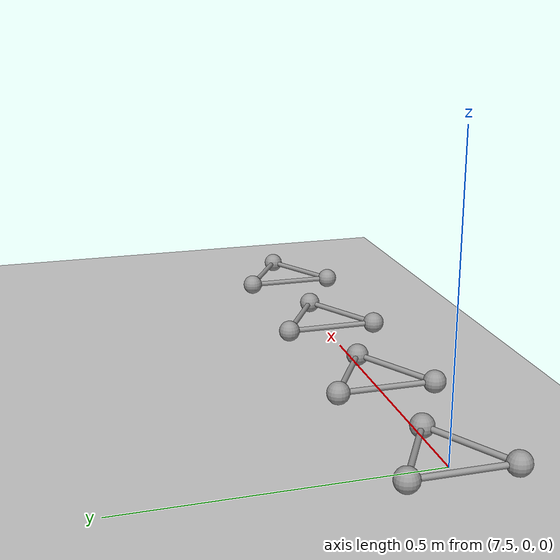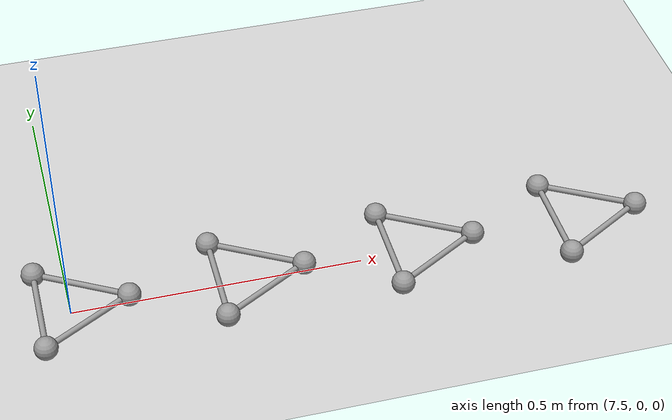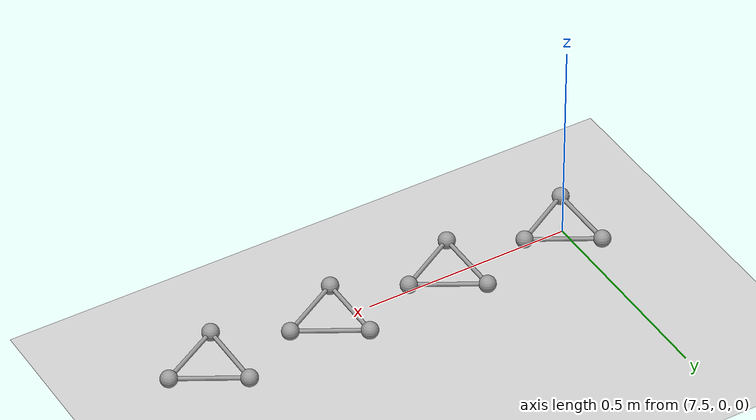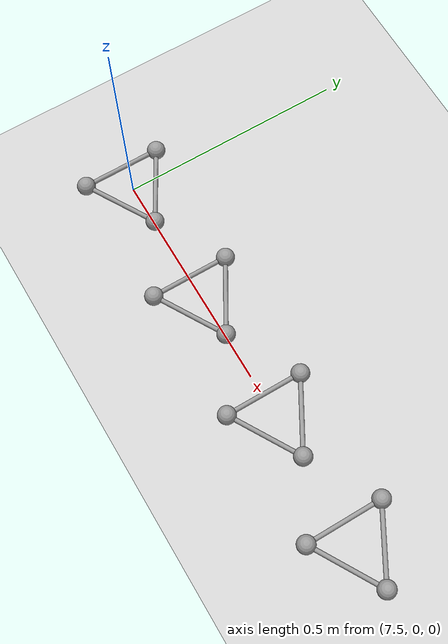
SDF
<sdf version="1.6">
 <world name="default">
  <include><uri>model://ground_plane</uri></include>
  <include><uri>model://sun</uri></include>
  <model name="triball_25">
   <pose>7.5 0 0 0 0 0</pose>
   <link name="link">
    <pose>0 0 0.02 0 0 0</pose>
    <inertial>
     <mass>0.060318578948924034</mass>
     <inertia>
      <ixx>0.000311243867376448</ixx>
      <iyy>0.000311243867376448</iyy>
      <izz>0.0006128367621210681</izz>
      <ixy>0.0</ixy>
      <ixz>0.0</ixz>
      <iyz>0.0</iyz>
     </inertia>
    </inertial>
    <sensor name="imu" type="imu"><always_on>true</always_on></sensor>
    <collision name="collision_a">
     <pose>0.09999999999999999 0 0  0 0 0</pose>
     <geometry><sphere><radius>0.02</radius></sphere></geometry>
     <surface><friction><ode><mu>0.9</mu><mu2>0.9</mu2><fdir1>1 0 0</fdir1></ode></friction></surface>
    </collision>
    <visual name="visual_a">
     <pose>0.09999999999999999 0 0  0 0 0</pose>
     <geometry><sphere><radius>0.02</radius></sphere></geometry>
     <material>
      <script><uri>file://media/materials/scripts/gazebo.material</uri><name>Gazebo/Grey</name></script>
     </material>
    </visual>
    <collision name="collision_a_to_b">
     <pose>0.024999999999999998 0.04330127018922193 0.0  -1.5707962969925737 -1.0471975511965974 1.047197525387029</pose>
     <geometry><cylinder><radius>0.005</radius><length>0.17320508075688773</length></cylinder></geometry>
     <surface><friction><ode><mu>0.9</mu><mu2>0.9</mu2></ode></friction></surface>
    </collision>
    <visual name="visual_a_to_b">
     <pose>0.024999999999999998 0.04330127018922193 0.0  -1.5707962969925737 -1.0471975511965974 1.047197525387029</pose>
     <geometry><cylinder><radius>0.005</radius><length>0.17320508075688773</length></cylinder></geometry>
     <material>
      <script><uri>file://media/materials/scripts/gazebo.material</uri><name>Gazebo/Grey</name></script>
     </material>
    </visual>
    <collision name="collision_a_to_c">
     <pose>0.024999999999999998 -0.04330127018922193 0.0  1.5707962969925737 -1.0471975511965974 -1.047197525387029</pose>
     <geometry><cylinder><radius>0.005</radius><length>0.17320508075688773</length></cylinder></geometry>
     <surface><friction><ode><mu>0.9</mu><mu2>0.9</mu2></ode></friction></surface>
    </collision>
    <visual name="visual_a_to_c">
     <pose>0.024999999999999998 -0.04330127018922193 0.0  1.5707962969925737 -1.0471975511965974 -1.047197525387029</pose>
     <geometry><cylinder><radius>0.005</radius><length>0.17320508075688773</length></cylinder></geometry>
     <material>
      <script><uri>file://media/materials/scripts/gazebo.material</uri><name>Gazebo/Grey</name></script>
     </material>
    </visual>
    <collision name="collision_b">
     <pose>-0.049999999999999996 0.08660254037844387 0  0 0 0</pose>
     <geometry><sphere><radius>0.02</radius></sphere></geometry>
     <surface><friction><ode><mu>0.9</mu><mu2>0.9</mu2><fdir1>1 0 0</fdir1></ode></friction></surface>
    </collision>
    <visual name="visual_b">
     <pose>-0.049999999999999996 0.08660254037844387 0  0 0 0</pose>
     <geometry><sphere><radius>0.02</radius></sphere></geometry>
     <material>
      <script><uri>file://media/materials/scripts/gazebo.material</uri><name>Gazebo/Grey</name></script>
     </material>
    </visual>
    <collision name="collision_b_to_c">
     <pose>-0.049999999999999996 0.0 0.0  1.5707963267948963 -0.0 0.0</pose>
     <geometry><cylinder><radius>0.005</radius><length>0.17320508075688773</length></cylinder></geometry>
     <surface><friction><ode><mu>0.9</mu><mu2>0.9</mu2></ode></friction></surface>
    </collision>
    <visual name="visual_b_to_c">
     <pose>-0.049999999999999996 0.0 0.0  1.5707963267948963 -0.0 0.0</pose>
     <geometry><cylinder><radius>0.005</radius><length>0.17320508075688773</length></cylinder></geometry>
     <material>
      <script><uri>file://media/materials/scripts/gazebo.material</uri><name>Gazebo/Grey</name></script>
     </material>
    </visual>
    <collision name="collision_c">
     <pose>-0.049999999999999996 -0.08660254037844387 0  0 0 0</pose>
     <geometry><sphere><radius>0.02</radius></sphere></geometry>
     <surface><friction><ode><mu>0.9</mu><mu2>0.9</mu2><fdir1>1 0 0</fdir1></ode></friction></surface>
    </collision>
    <visual name="visual_c">
     <pose>-0.049999999999999996 -0.08660254037844387 0  0 0 0</pose>
     <geometry><sphere><radius>0.02</radius></sphere></geometry>
     <material>
      <script><uri>file://media/materials/scripts/gazebo.material</uri><name>Gazebo/Grey</name></script>
     </material>
    </visual>
   </link>
   <plugin name="triball_25" filename="libInitialVelocityPlugin.so">
    <linear>0 15 0</linear>
    <angular>0 0 84.375</angular>
   </plugin>
  </model>
  <model name="triball_26">
   <pose>7.8 0 0 0 0 0</pose>
   <link name="link">
    <pose>0 0 0.02 0 0 0</pose>
    <inertial>
     <mass>0.060318578948924034</mass>
     <inertia>
      <ixx>0.000311243867376448</ixx>
      <iyy>0.000311243867376448</iyy>
      <izz>0.0006128367621210681</izz>
      <ixy>0.0</ixy>
      <ixz>0.0</ixz>
      <iyz>0.0</iyz>
     </inertia>
    </inertial>
    <sensor name="imu" type="imu"><always_on>true</always_on></sensor>
    <collision name="collision_a">
     <pose>0.09999999999999999 0 0  0 0 0</pose>
     <geometry><sphere><radius>0.02</radius></sphere></geometry>
     <surface><friction><ode><mu>0.9</mu><mu2>0.9</mu2><fdir1>1 0 0</fdir1></ode></friction></surface>
    </collision>
    <visual name="visual_a">
     <pose>0.09999999999999999 0 0  0 0 0</pose>
     <geometry><sphere><radius>0.02</radius></sphere></geometry>
     <material>
      <script><uri>file://media/materials/scripts/gazebo.material</uri><name>Gazebo/Grey</name></script>
     </material>
    </visual>
    <collision name="collision_a_to_b">
     <pose>0.024999999999999998 0.04330127018922193 0.0  -1.5707962969925737 -1.0471975511965974 1.047197525387029</pose>
     <geometry><cylinder><radius>0.005</radius><length>0.17320508075688773</length></cylinder></geometry>
     <surface><friction><ode><mu>0.9</mu><mu2>0.9</mu2></ode></friction></surface>
    </collision>
    <visual name="visual_a_to_b">
     <pose>0.024999999999999998 0.04330127018922193 0.0  -1.5707962969925737 -1.0471975511965974 1.047197525387029</pose>
     <geometry><cylinder><radius>0.005</radius><length>0.17320508075688773</length></cylinder></geometry>
     <material>
      <script><uri>file://media/materials/scripts/gazebo.material</uri><name>Gazebo/Grey</name></script>
     </material>
    </visual>
    <collision name="collision_a_to_c">
     <pose>0.024999999999999998 -0.04330127018922193 0.0  1.5707962969925737 -1.0471975511965974 -1.047197525387029</pose>
     <geometry><cylinder><radius>0.005</radius><length>0.17320508075688773</length></cylinder></geometry>
     <surface><friction><ode><mu>0.9</mu><mu2>0.9</mu2></ode></friction></surface>
    </collision>
    <visual name="visual_a_to_c">
     <pose>0.024999999999999998 -0.04330127018922193 0.0  1.5707962969925737 -1.0471975511965974 -1.047197525387029</pose>
     <geometry><cylinder><radius>0.005</radius><length>0.17320508075688773</length></cylinder></geometry>
     <material>
      <script><uri>file://media/materials/scripts/gazebo.material</uri><name>Gazebo/Grey</name></script>
     </material>
    </visual>
    <collision name="collision_b">
     <pose>-0.049999999999999996 0.08660254037844387 0  0 0 0</pose>
     <geometry><sphere><radius>0.02</radius></sphere></geometry>
     <surface><friction><ode><mu>0.9</mu><mu2>0.9</mu2><fdir1>1 0 0</fdir1></ode></friction></surface>
    </collision>
    <visual name="visual_b">
     <pose>-0.049999999999999996 0.08660254037844387 0  0 0 0</pose>
     <geometry><sphere><radius>0.02</radius></sphere></geometry>
     <material>
      <script><uri>file://media/materials/scripts/gazebo.material</uri><name>Gazebo/Grey</name></script>
     </material>
    </visual>
    <collision name="collision_b_to_c">
     <pose>-0.049999999999999996 0.0 0.0  1.5707963267948963 -0.0 0.0</pose>
     <geometry><cylinder><radius>0.005</radius><length>0.17320508075688773</length></cylinder></geometry>
     <surface><friction><ode><mu>0.9</mu><mu2>0.9</mu2></ode></friction></surface>
    </collision>
    <visual name="visual_b_to_c">
     <pose>-0.049999999999999996 0.0 0.0  1.5707963267948963 -0.0 0.0</pose>
     <geometry><cylinder><radius>0.005</radius><length>0.17320508075688773</length></cylinder></geometry>
     <material>
      <script><uri>file://media/materials/scripts/gazebo.material</uri><name>Gazebo/Grey</name></script>
     </material>
    </visual>
    <collision name="collision_c">
     <pose>-0.049999999999999996 -0.08660254037844387 0  0 0 0</pose>
     <geometry><sphere><radius>0.02</radius></sphere></geometry>
     <surface><friction><ode><mu>0.9</mu><mu2>0.9</mu2><fdir1>1 0 0</fdir1></ode></friction></surface>
    </collision>
    <visual name="visual_c">
     <pose>-0.049999999999999996 -0.08660254037844387 0  0 0 0</pose>
     <geometry><sphere><radius>0.02</radius></sphere></geometry>
     <material>
      <script><uri>file://media/materials/scripts/gazebo.material</uri><name>Gazebo/Grey</name></script>
     </material>
    </visual>
   </link>
   <plugin name="triball_26" filename="libInitialVelocityPlugin.so">
    <linear>0 15 0</linear>
    <angular>0 0 93.75</angular>
   </plugin>
  </model>
  <model name="triball_27">
   <pose>8.1 0 0 0 0 0</pose>
   <link name="link">
    <pose>0 0 0.02 0 0 0</pose>
    <inertial>
     <mass>0.060318578948924034</mass>
     <inertia>
      <ixx>0.000311243867376448</ixx>
      <iyy>0.000311243867376448</iyy>
      <izz>0.0006128367621210681</izz>
      <ixy>0.0</ixy>
      <ixz>0.0</ixz>
      <iyz>0.0</iyz>
     </inertia>
    </inertial>
    <sensor name="imu" type="imu"><always_on>true</always_on></sensor>
    <collision name="collision_a">
     <pose>0.09999999999999999 0 0  0 0 0</pose>
     <geometry><sphere><radius>0.02</radius></sphere></geometry>
     <surface><friction><ode><mu>0.9</mu><mu2>0.9</mu2><fdir1>1 0 0</fdir1></ode></friction></surface>
    </collision>
    <visual name="visual_a">
     <pose>0.09999999999999999 0 0  0 0 0</pose>
     <geometry><sphere><radius>0.02</radius></sphere></geometry>
     <material>
      <script><uri>file://media/materials/scripts/gazebo.material</uri><name>Gazebo/Grey</name></script>
     </material>
    </visual>
    <collision name="collision_a_to_b">
     <pose>0.024999999999999998 0.04330127018922193 0.0  -1.5707962969925737 -1.0471975511965974 1.047197525387029</pose>
     <geometry><cylinder><radius>0.005</radius><length>0.17320508075688773</length></cylinder></geometry>
     <surface><friction><ode><mu>0.9</mu><mu2>0.9</mu2></ode></friction></surface>
    </collision>
    <visual name="visual_a_to_b">
     <pose>0.024999999999999998 0.04330127018922193 0.0  -1.5707962969925737 -1.0471975511965974 1.047197525387029</pose>
     <geometry><cylinder><radius>0.005</radius><length>0.17320508075688773</length></cylinder></geometry>
     <material>
      <script><uri>file://media/materials/scripts/gazebo.material</uri><name>Gazebo/Grey</name></script>
     </material>
    </visual>
    <collision name="collision_a_to_c">
     <pose>0.024999999999999998 -0.04330127018922193 0.0  1.5707962969925737 -1.0471975511965974 -1.047197525387029</pose>
     <geometry><cylinder><radius>0.005</radius><length>0.17320508075688773</length></cylinder></geometry>
     <surface><friction><ode><mu>0.9</mu><mu2>0.9</mu2></ode></friction></surface>
    </collision>
    <visual name="visual_a_to_c">
     <pose>0.024999999999999998 -0.04330127018922193 0.0  1.5707962969925737 -1.0471975511965974 -1.047197525387029</pose>
     <geometry><cylinder><radius>0.005</radius><length>0.17320508075688773</length></cylinder></geometry>
     <material>
      <script><uri>file://media/materials/scripts/gazebo.material</uri><name>Gazebo/Grey</name></script>
     </material>
    </visual>
    <collision name="collision_b">
     <pose>-0.049999999999999996 0.08660254037844387 0  0 0 0</pose>
     <geometry><sphere><radius>0.02</radius></sphere></geometry>
     <surface><friction><ode><mu>0.9</mu><mu2>0.9</mu2><fdir1>1 0 0</fdir1></ode></friction></surface>
    </collision>
    <visual name="visual_b">
     <pose>-0.049999999999999996 0.08660254037844387 0  0 0 0</pose>
     <geometry><sphere><radius>0.02</radius></sphere></geometry>
     <material>
      <script><uri>file://media/materials/scripts/gazebo.material</uri><name>Gazebo/Grey</name></script>
     </material>
    </visual>
    <collision name="collision_b_to_c">
     <pose>-0.049999999999999996 0.0 0.0  1.5707963267948963 -0.0 0.0</pose>
     <geometry><cylinder><radius>0.005</radius><length>0.17320508075688773</length></cylinder></geometry>
     <surface><friction><ode><mu>0.9</mu><mu2>0.9</mu2></ode></friction></surface>
    </collision>
    <visual name="visual_b_to_c">
     <pose>-0.049999999999999996 0.0 0.0  1.5707963267948963 -0.0 0.0</pose>
     <geometry><cylinder><radius>0.005</radius><length>0.17320508075688773</length></cylinder></geometry>
     <material>
      <script><uri>file://media/materials/scripts/gazebo.material</uri><name>Gazebo/Grey</name></script>
     </material>
    </visual>
    <collision name="collision_c">
     <pose>-0.049999999999999996 -0.08660254037844387 0  0 0 0</pose>
     <geometry><sphere><radius>0.02</radius></sphere></geometry>
     <surface><friction><ode><mu>0.9</mu><mu2>0.9</mu2><fdir1>1 0 0</fdir1></ode></friction></surface>
    </collision>
    <visual name="visual_c">
     <pose>-0.049999999999999996 -0.08660254037844387 0  0 0 0</pose>
     <geometry><sphere><radius>0.02</radius></sphere></geometry>
     <material>
      <script><uri>file://media/materials/scripts/gazebo.material</uri><name>Gazebo/Grey</name></script>
     </material>
    </visual>
   </link>
   <plugin name="triball_27" filename="libInitialVelocityPlugin.so">
    <linear>0 15 0</linear>
    <angular>0 0 103.125</angular>
   </plugin>
  </model>
  <model name="triball_28">
   <pose>8.4 0 0 0 0 0</pose>
   <link name="link">
    <pose>0 0 0.02 0 0 0</pose>
    <inertial>
     <mass>0.060318578948924034</mass>
     <inertia>
      <ixx>0.000311243867376448</ixx>
      <iyy>0.000311243867376448</iyy>
      <izz>0.0006128367621210681</izz>
      <ixy>0.0</ixy>
      <ixz>0.0</ixz>
      <iyz>0.0</iyz>
     </inertia>
    </inertial>
    <sensor name="imu" type="imu"><always_on>true</always_on></sensor>
    <collision name="collision_a">
     <pose>0.09999999999999999 0 0  0 0 0</pose>
     <geometry><sphere><radius>0.02</radius></sphere></geometry>
     <surface><friction><ode><mu>0.9</mu><mu2>0.9</mu2><fdir1>1 0 0</fdir1></ode></friction></surface>
    </collision>
    <visual name="visual_a">
     <pose>0.09999999999999999 0 0  0 0 0</pose>
     <geometry><sphere><radius>0.02</radius></sphere></geometry>
     <material>
      <script><uri>file://media/materials/scripts/gazebo.material</uri><name>Gazebo/Grey</name></script>
     </material>
    </visual>
    <collision name="collision_a_to_b">
     <pose>0.024999999999999998 0.04330127018922193 0.0  -1.5707962969925737 -1.0471975511965974 1.047197525387029</pose>
     <geometry><cylinder><radius>0.005</radius><length>0.17320508075688773</length></cylinder></geometry>
     <surface><friction><ode><mu>0.9</mu><mu2>0.9</mu2></ode></friction></surface>
    </collision>
    <visual name="visual_a_to_b">
     <pose>0.024999999999999998 0.04330127018922193 0.0  -1.5707962969925737 -1.0471975511965974 1.047197525387029</pose>
     <geometry><cylinder><radius>0.005</radius><length>0.17320508075688773</length></cylinder></geometry>
     <material>
      <script><uri>file://media/materials/scripts/gazebo.material</uri><name>Gazebo/Grey</name></script>
     </material>
    </visual>
    <collision name="collision_a_to_c">
     <pose>0.024999999999999998 -0.04330127018922193 0.0  1.5707962969925737 -1.0471975511965974 -1.047197525387029</pose>
     <geometry><cylinder><radius>0.005</radius><length>0.17320508075688773</length></cylinder></geometry>
     <surface><friction><ode><mu>0.9</mu><mu2>0.9</mu2></ode></friction></surface>
    </collision>
    <visual name="visual_a_to_c">
     <pose>0.024999999999999998 -0.04330127018922193 0.0  1.5707962969925737 -1.0471975511965974 -1.047197525387029</pose>
     <geometry><cylinder><radius>0.005</radius><length>0.17320508075688773</length></cylinder></geometry>
     <material>
      <script><uri>file://media/materials/scripts/gazebo.material</uri><name>Gazebo/Grey</name></script>
     </material>
    </visual>
    <collision name="collision_b">
     <pose>-0.049999999999999996 0.08660254037844387 0  0 0 0</pose>
     <geometry><sphere><radius>0.02</radius></sphere></geometry>
     <surface><friction><ode><mu>0.9</mu><mu2>0.9</mu2><fdir1>1 0 0</fdir1></ode></friction></surface>
    </collision>
    <visual name="visual_b">
     <pose>-0.049999999999999996 0.08660254037844387 0  0 0 0</pose>
     <geometry><sphere><radius>0.02</radius></sphere></geometry>
     <material>
      <script><uri>file://media/materials/scripts/gazebo.material</uri><name>Gazebo/Grey</name></script>
     </material>
    </visual>
    <collision name="collision_b_to_c">
     <pose>-0.049999999999999996 0.0 0.0  1.5707963267948963 -0.0 0.0</pose>
     <geometry><cylinder><radius>0.005</radius><length>0.17320508075688773</length></cylinder></geometry>
     <surface><friction><ode><mu>0.9</mu><mu2>0.9</mu2></ode></friction></surface>
    </collision>
    <visual name="visual_b_to_c">
     <pose>-0.049999999999999996 0.0 0.0  1.5707963267948963 -0.0 0.0</pose>
     <geometry><cylinder><radius>0.005</radius><length>0.17320508075688773</length></cylinder></geometry>
     <material>
      <script><uri>file://media/materials/scripts/gazebo.material</uri><name>Gazebo/Grey</name></script>
     </material>
    </visual>
    <collision name="collision_c">
     <pose>-0.049999999999999996 -0.08660254037844387 0  0 0 0</pose>
     <geometry><sphere><radius>0.02</radius></sphere></geometry>
     <surface><friction><ode><mu>0.9</mu><mu2>0.9</mu2><fdir1>1 0 0</fdir1></ode></friction></surface>
    </collision>
    <visual name="visual_c">
     <pose>-0.049999999999999996 -0.08660254037844387 0  0 0 0</pose>
     <geometry><sphere><radius>0.02</radius></sphere></geometry>
     <material>
      <script><uri>file://media/materials/scripts/gazebo.material</uri><name>Gazebo/Grey</name></script>
     </material>
    </visual>
   </link>
   <plugin name="triball_28" filename="libInitialVelocityPlugin.so">
    <linear>0 15 0</linear>
    <angular>0 0 112.5</angular>
   </plugin>
  </model>
 </world>
</sdf>
